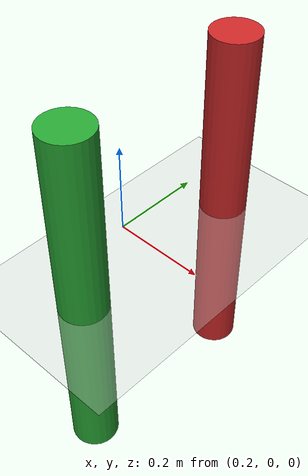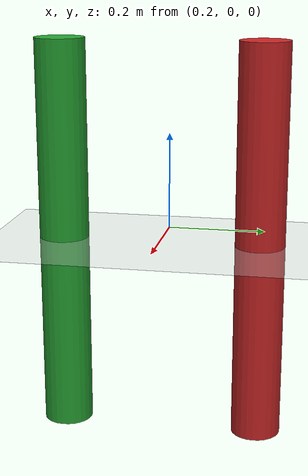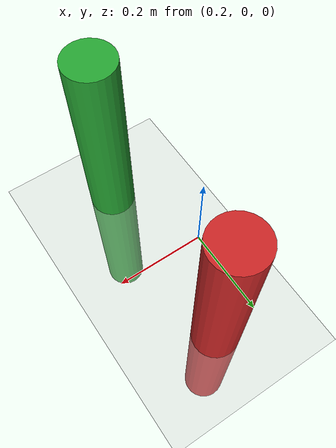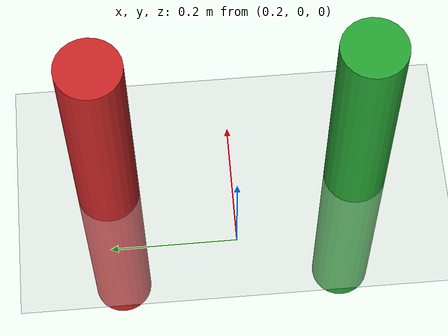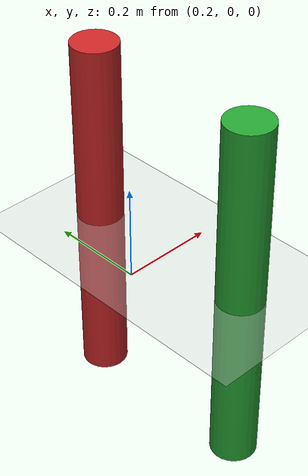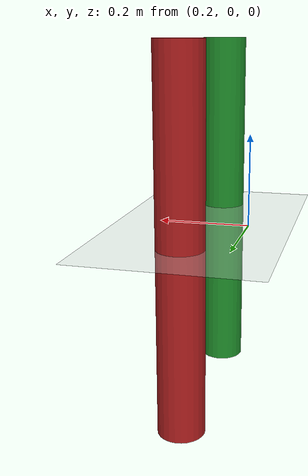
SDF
<?xml version="1.0"?>
<sdf version="1.4">
  <world name="default">

    <include>
      <uri>model://sun</uri>
    </include>
    <include>
      <uri>model://ground_plane</uri>
    </include>

    <!-- Obstacle Box 1 -->
    <model name="Obs1">
        <pose>0.3 -0.2 0 0 0 0</pose>
      <link name="linkob1">
        <collision name="collisionob1">
          <geometry>
            <cylinder>
              <radius>0.05</radius>
              <length>0.8</length>
            </cylinder>
          </geometry>
          <surface>
              <friction>
                <ode>
                  <mu>0</mu>
                  <mu2>0</mu2>
                </ode>
              </friction>
            </surface>
        </collision>

        <visual name="visualob1">
          <geometry>
            <cylinder>
              <radius>0.05</radius>
              <length>0.8</length>
            </cylinder>
          </geometry>
          <material>
              <script>
                <uri>file://media/materials/scripts/gazebo.material</uri>
                <name>Gazebo/Green</name>
              </script>
            </material>
        </visual>
      </link>
      <plugin name="obstacles_mover_plugin" filename="libobstacles_mover_plugin.so"/>
    </model>

    <!-- Obstacle Box 2 -->
    <model name="Obs2">
        <pose>0.3 0.2 0 0 0 0</pose>
      <link name="linkob2">
        <collision name="collisionob2">
          <geometry>
            <cylinder>
              <radius>0.05</radius>
              <length>0.8</length>
            </cylinder>
          </geometry>
          <surface>
              <friction>
                <ode>
                  <mu>0</mu>
                  <mu2>0</mu2>
                </ode>
              </friction>
            </surface>
        </collision>

        <visual name="visualob2">
          <geometry>
            <cylinder>
              <radius>0.05</radius>
              <length>0.8</length>
            </cylinder>
          </geometry>
          <material>
              <script>
                <uri>file://media/materials/scripts/gazebo.material</uri>
                <name>Gazebo/Red</name>
              </script>
            </material>
        </visual>
      </link>
      <plugin name="obstacles_mover_plugin" filename="libobstacles_mover_plugin.so"/>
    </model>

  </world>
</sdf>
